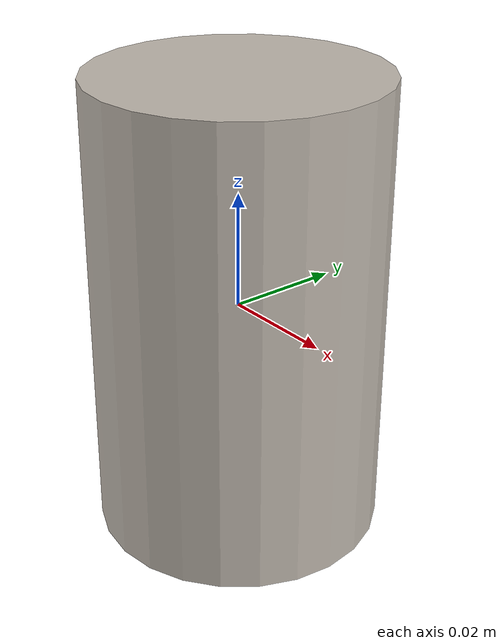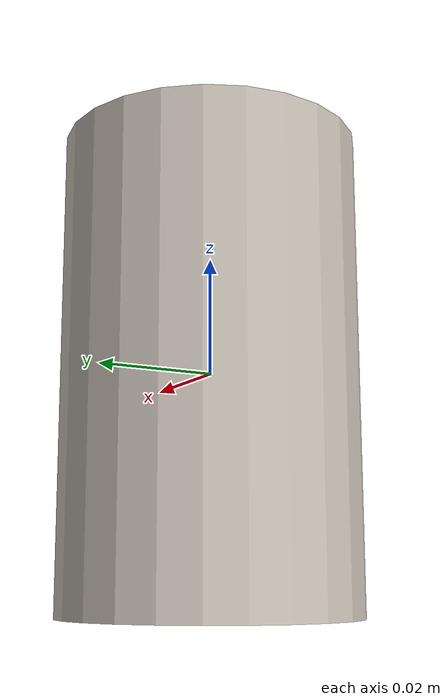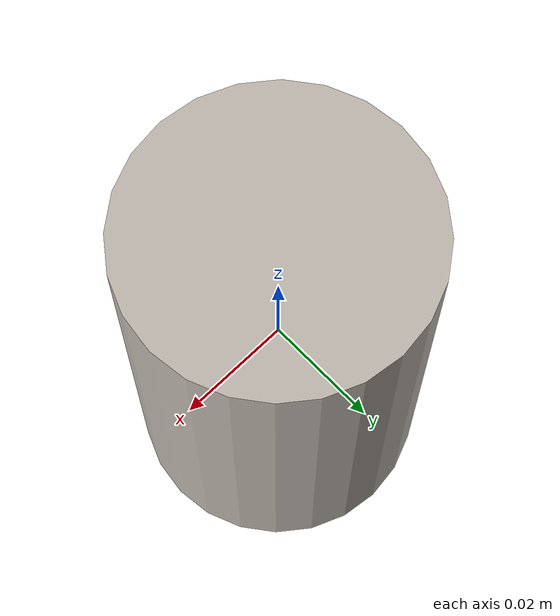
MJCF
<mujoco model="drpepper">
  <asset>
    <texture file="textures/can/drpepper.png" name="tex-pepper"/>
    <material name="drpepper" reflectance="0.7" texrepeat="5 5" texture="tex-pepper" texuniform="true"/>
  </asset>
  <worldbody>
    <body>
      <body name="collision">
        <geom pos="0 0 0" size="0.025 0.04" type="cylinder" solimp="0.998 0.998 0.001" solref="0.001 1" density="100" friction="0.95 0.3 0.1" material="drpepper" group="1" condim="4"/>
      </body>

      <site rgba="1 0 0 0" size="0.005" pos="0 0 -0.08" name="bottom_site"/>
      <site rgba="0 1 0 0" size="0.005" pos="0 0 0.0" name="top_site"/>
      <site rgba="0 0 1 0" size="0.005" pos="0.06 0.06 0" name="horizontal_radius_site"/>
    </body>
  </worldbody>
</mujoco>
